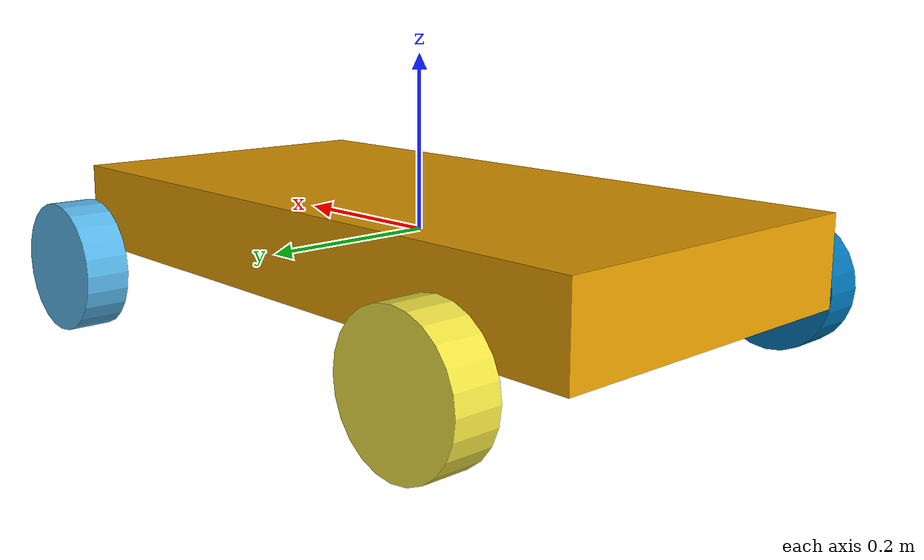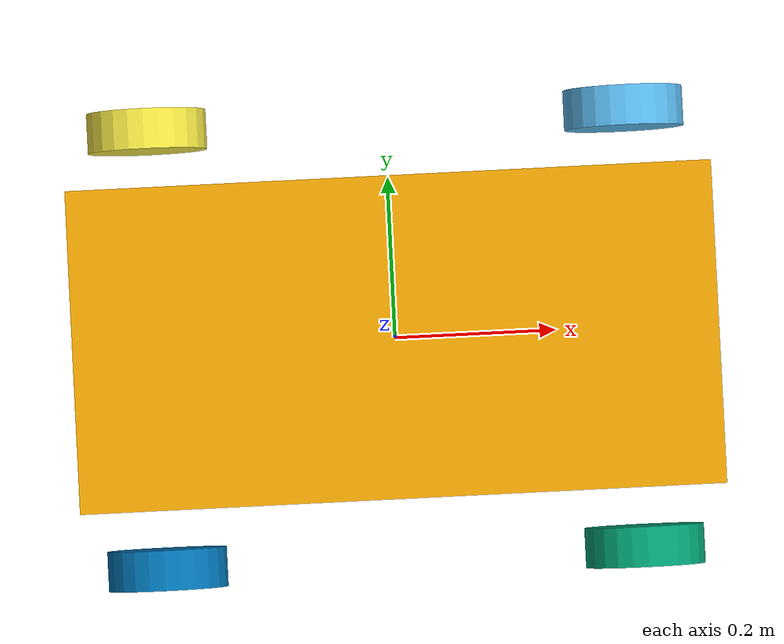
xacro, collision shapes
<?xml version="1.0"?>
<!-- Revolute-Revolute Manipulator -->
<robot name="bixi" xmlns:xacro="http://www.ros.org/wiki/xacro">
    <xacro:include filename="$(find urdf_sim_tutorial)/urdf/bixi/urdf/wheel.urdf.xacro" />
    <!-- Constants for robot dimensions -->
    <xacro:property name="M_PI" value="3.1415926535897931"/>

    <!-- this section must be changed according to the real robot -->
    <!-- Base Size -->
    <property name="base_mass" value="10" />
    <property name="base_x_size" value="0.8" />
    <property name="base_y_size" value="0.4" />
    <property name="base_z_size" value="0.1" />

    <!-- Wheel Mounting Positions -->
    <xacro:property name="wheelbase" value="0.6" />
    <xacro:property name="track" value="0.55" />
    <xacro:property name="wheel_vertical_offset" value="0.05" />

    <!-- Wheel Properties -->
    <xacro:property name="wheel_radius" value="0.075" />

    <!-- base link is the center of the robot's bottom plate -->
    <link name="base_link">
        <visual>
            <origin xyz="0 0 0" rpy="0 0 0" />
            <geometry>
                <mesh filename="package://urdf_sim_tutorial/urdf/bixi/meshes/chasis.dae" scale="1 1 1" />
            </geometry>
        </visual>
        <collision>
            <origin xyz="0 0 0" rpy="0 0 0" />
            <geometry>
                <box size="${base_x_size} ${base_y_size} ${base_z_size}"/>
            </geometry>
        </collision>
        <inertial>
            <mass value="${base_mass}" />
            <origin xyz="0 0 0" />
            <inertia ixx="${1/12*base_mass*(base_x_size*base_x_size + base_z_size*base_z_size)}"
                iyy="${1/12*base_mass*(base_y_size*base_y_size + base_z_size*base_z_size)}"
                izz="${1/12*base_mass*(base_y_size*base_y_size + base_x_size*base_x_size)}"
                ixy="0" ixz="0" iyz="0" />
        </inertial>
    </link>

    <!-- Husky wheel macros -->
    <xacro:wheel ccw="1" wheel_prefix="front_left">
        <origin xyz="${wheelbase/2} ${track/2} -${wheel_vertical_offset}" rpy="0 0 0" />
    </xacro:wheel>
    <xacro:wheel ccw="0" wheel_prefix="front_right">
        <origin xyz="${wheelbase/2} ${-track/2} -${wheel_vertical_offset}" rpy="0 0 0" />
    </xacro:wheel>
    <xacro:wheel ccw="0" wheel_prefix="rear_left">
        <origin xyz="${-wheelbase/2} ${track/2} -${wheel_vertical_offset}" rpy="0 0 0" />
    </xacro:wheel>
    <xacro:wheel ccw="1" wheel_prefix="rear_right">
        <origin xyz="${-wheelbase/2} ${-track/2} -${wheel_vertical_offset}" rpy="0 0 0" />
    </xacro:wheel>

</robot>

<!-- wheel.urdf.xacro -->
<robot xmlns:xacro="http://www.ros.org/wiki/xacro" name="wheel">

    <!-- this section must be changed according to the real robot -->
    <!-- Wheel Properties -->
    <xacro:property name="M_PI" value="3.1415926535897931"/>
    <xacro:property name="wheel_mass" value="0.158" />
    <xacro:property name="wheel_length" value="0.05" />
    <xacro:property name="wheel_radius" value="0.075" />
    <xacro:macro name="wheel" params="ccw wheel_prefix *joint_pose">
        <link name="${wheel_prefix}_wheel_link">
            <inertial>
                <mass value="${wheel_mass}" />
                <origin xyz="0 0 0" />
                <inertia ixx="${1/12*wheel_mass*(3*wheel_radius*wheel_radius + wheel_length*wheel_length)}"
                    iyy="${1/12*wheel_mass*(3*wheel_radius*wheel_radius + wheel_length*wheel_length)}"
                    izz="${1/2*wheel_mass*wheel_radius*wheel_radius}"
                    ixy="0" ixz="0" iyz="0" />
            </inertial>
            <visual>
                <origin xyz="0 0 0" rpy="0 0 0" />
                <geometry>
                    <xacro:unless value="${ccw == 0}">
                        <mesh filename="package://urdf_sim_tutorial/urdf/bixi/meshes/mec_f_l.dae" scale="1 1 1"/>
                    </xacro:unless>
                    <xacro:if value="${ccw == 0}">
                        <mesh filename="package://urdf_sim_tutorial/urdf/bixi/meshes/mec_f_r.dae" scale="1 1 1"/>
                    </xacro:if>
                </geometry>
            </visual>
            <collision>
                <origin xyz="0 0 0" rpy="${M_PI/2} 0 0" />
                <geometry>
                    <cylinder length="${wheel_length}" radius="${wheel_radius}" />
                </geometry>
            </collision>
        </link>

        <gazebo reference="${wheel_prefix}_wheel_link">
            <mu1 value="1.0"/>
            <mu2 value="1.0"/>
            <kp value="10000000.0" />
            <kd value="1.0" />
            <fdir1 value="1 0 0"/>
        </gazebo>

        <joint name="${wheel_prefix}_wheel" type="continuous">
            <parent link="base_link"/>
            <child link="${wheel_prefix}_wheel_link"/>
            <xacro:insert_block name="joint_pose"/>
            <axis xyz="0 1 0" rpy="0 0 0" />
        </joint>

        <transmission name="${wheel_prefix}_wheel_trans">
            <type>transmission_interface/SimpleTransmission</type>
            <actuator name="${wheel_prefix}_wheel_motor">
                <hardwareInterface>VelocityJointInterface</hardwareInterface>
                <mechanicalReduction>1</mechanicalReduction>
            </actuator>
            <joint name="${wheel_prefix}_wheel">
                <hardwareInterface>VelocityJointInterface</hardwareInterface>
            </joint>
        </transmission>
    </xacro:macro>
</robot>
